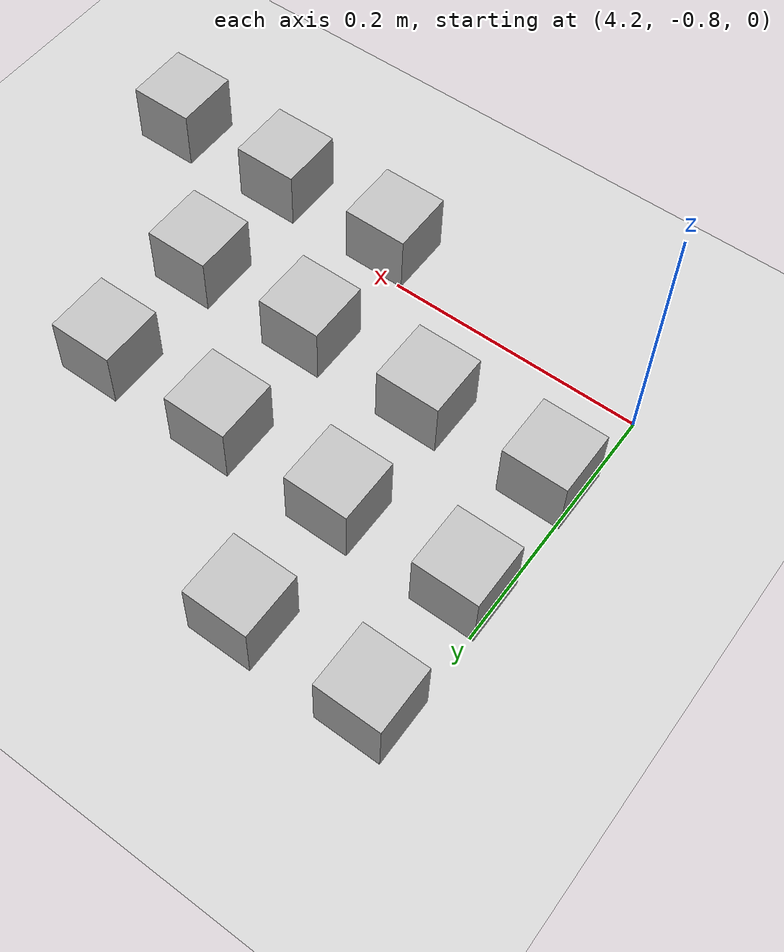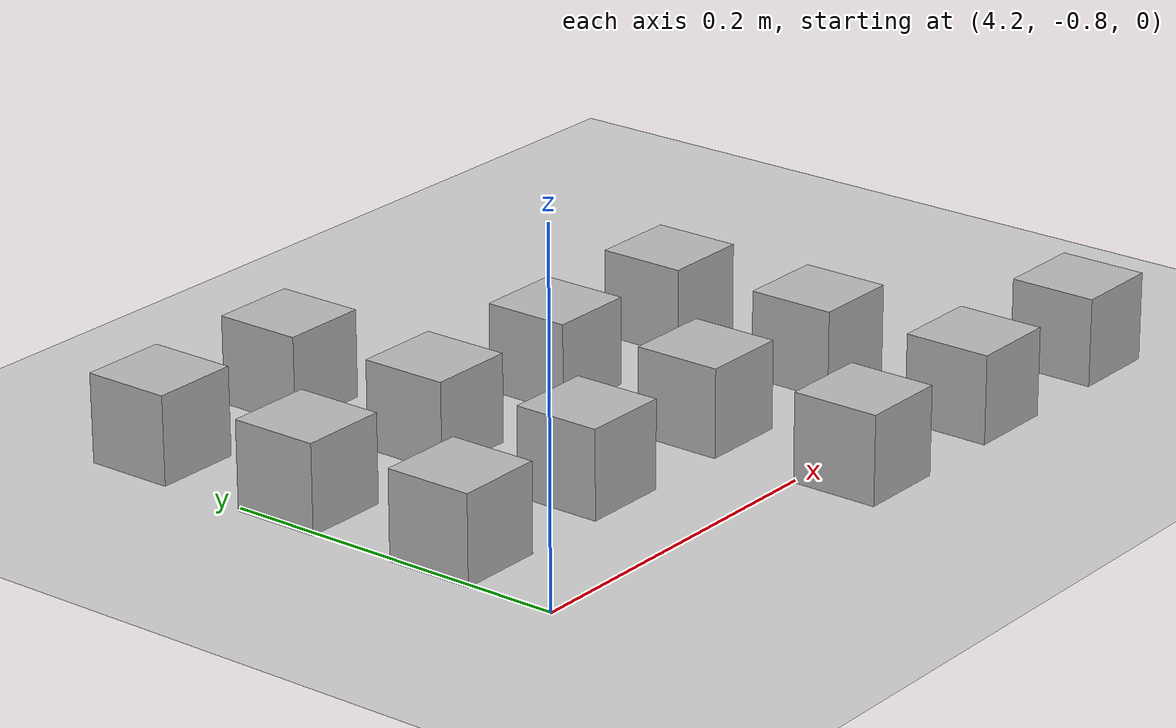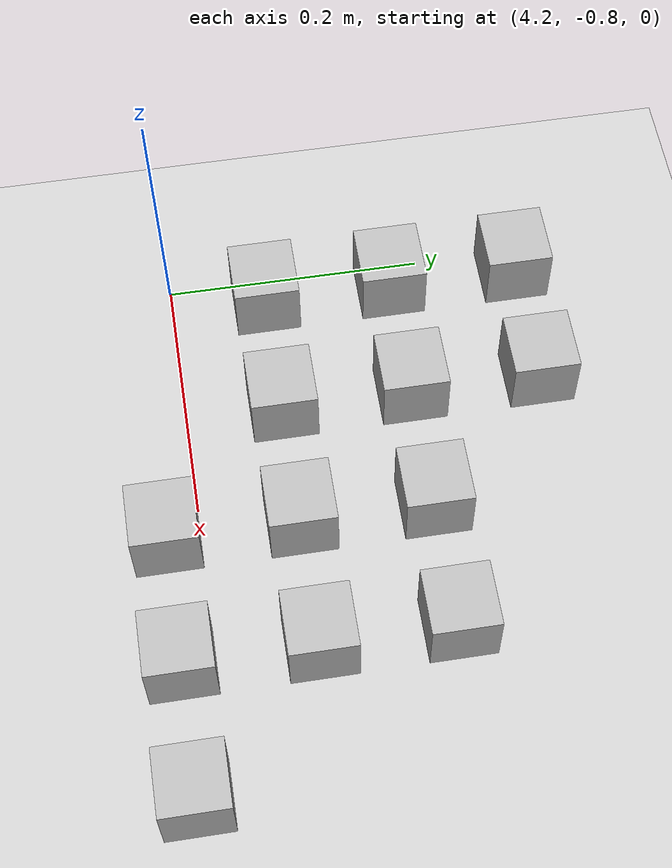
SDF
<sdf version="1.6">
 <world name="default">
  <model name="ground_plane">
   <static>1</static>
   <link name="link">
    <collision name="collision">
     <geometry><plane><normal>0 0 1</normal><size>100 100</size></plane></geometry>
     <surface><friction><ode><mu>100</mu><mu2>50</mu2></ode></friction></surface>
    </collision>
    <visual name="visual">
     <cast_shadows>0</cast_shadows>
     <geometry><plane><normal>0 0 1</normal><size>100 100</size></plane></geometry>
     <material>
      <script><uri>file://media/materials/scripts/gazebo.material</uri><name>Gazebo/Grey</name></script>
     </material>
    </visual>
   </link>
  </model>
  <model name="at18">
   <static>0</static>
   <link name="link">
    <inertial>
     <mass>0.01</mass>
     <inertia><ixx>4e-05</ixx><ixy>0</ixy><ixz>0</ixz><iyy>4e-05</iyy><iyz>0</iyz><izz>4e-05</izz></inertia>
    </inertial>
    <visual name="visual">
     <geometry><box><size>0.05 0.05 0.05</size></box></geometry>
     <material>
      <script>
       <uri>model://at0/materials/scripts</uri>
       <uri>model://at0/materials/textures</uri>
       <name>at0/Diffuse</name>
      </script>
     </material>
    </visual>
    <collision name="collision">
     <geometry><box><size>0.05 0.05 0.05</size></box></geometry>
     <surface><friction><ode><mu>0.8</mu><mu2>0.7</mu2></ode></friction></surface>
    </collision>
   </link>
   <pose>4.42228 -0.82543 0.025 0 -0 0</pose>
  </model>
  <model name="at19">
   <static>0</static>
   <link name="link">
    <inertial>
     <mass>0.01</mass>
     <inertia><ixx>4e-05</ixx><ixy>0</ixy><ixz>0</ixz><iyy>4e-05</iyy><iyz>0</iyz><izz>4e-05</izz></inertia>
    </inertial>
    <visual name="visual">
     <geometry><box><size>0.05 0.05 0.05</size></box></geometry>
     <material>
      <script>
       <uri>model://at0/materials/scripts</uri>
       <uri>model://at0/materials/textures</uri>
       <name>at0/Diffuse</name>
      </script>
     </material>
    </visual>
    <collision name="collision">
     <geometry><box><size>0.05 0.05 0.05</size></box></geometry>
     <surface><friction><ode><mu>0.8</mu><mu2>0.7</mu2></ode></friction></surface>
    </collision>
   </link>
   <pose>4.52228 -0.82543 0.025 0 -0 0</pose>
  </model>
  <model name="at20">
   <static>0</static>
   <link name="link">
    <inertial>
     <mass>0.01</mass>
     <inertia><ixx>4e-05</ixx><ixy>0</ixy><ixz>0</ixz><iyy>4e-05</iyy><iyz>0</iyz><izz>4e-05</izz></inertia>
    </inertial>
    <visual name="visual">
     <geometry><box><size>0.05 0.05 0.05</size></box></geometry>
     <material>
      <script>
       <uri>model://at0/materials/scripts</uri>
       <uri>model://at0/materials/textures</uri>
       <name>at0/Diffuse</name>
      </script>
     </material>
    </visual>
    <collision name="collision">
     <geometry><box><size>0.05 0.05 0.05</size></box></geometry>
     <surface><friction><ode><mu>0.8</mu><mu2>0.7</mu2></ode></friction></surface>
    </collision>
   </link>
   <pose>4.62228 -0.82543 0.025 0 -0 0</pose>
  </model>
  <model name="at24">
   <static>0</static>
   <link name="link">
    <inertial>
     <mass>0.01</mass>
     <inertia><ixx>4e-05</ixx><ixy>0</ixy><ixz>0</ixz><iyy>4e-05</iyy><iyz>0</iyz><izz>4e-05</izz></inertia>
    </inertial>
    <visual name="visual">
     <geometry><box><size>0.05 0.05 0.05</size></box></geometry>
     <material>
      <script>
       <uri>model://at0/materials/scripts</uri>
       <uri>model://at0/materials/textures</uri>
       <name>at0/Diffuse</name>
      </script>
     </material>
    </visual>
    <collision name="collision">
     <geometry><box><size>0.05 0.05 0.05</size></box></geometry>
     <surface><friction><ode><mu>0.8</mu><mu2>0.7</mu2></ode></friction></surface>
    </collision>
   </link>
   <pose>4.22228 -0.72543 0.025 0 -0 0</pose>
  </model>
  <model name="at25">
   <static>0</static>
   <link name="link">
    <inertial>
     <mass>0.01</mass>
     <inertia><ixx>4e-05</ixx><ixy>0</ixy><ixz>0</ixz><iyy>4e-05</iyy><iyz>0</iyz><izz>4e-05</izz></inertia>
    </inertial>
    <visual name="visual">
     <geometry><box><size>0.05 0.05 0.05</size></box></geometry>
     <material>
      <script>
       <uri>model://at0/materials/scripts</uri>
       <uri>model://at0/materials/textures</uri>
       <name>at0/Diffuse</name>
      </script>
     </material>
    </visual>
    <collision name="collision">
     <geometry><box><size>0.05 0.05 0.05</size></box></geometry>
     <surface><friction><ode><mu>0.8</mu><mu2>0.7</mu2></ode></friction></surface>
    </collision>
   </link>
   <pose>4.32228 -0.72543 0.025 0 -0 0</pose>
  </model>
  <model name="at26">
   <static>0</static>
   <link name="link">
    <inertial>
     <mass>0.01</mass>
     <inertia><ixx>4e-05</ixx><ixy>0</ixy><ixz>0</ixz><iyy>4e-05</iyy><iyz>0</iyz><izz>4e-05</izz></inertia>
    </inertial>
    <visual name="visual">
     <geometry><box><size>0.05 0.05 0.05</size></box></geometry>
     <material>
      <script>
       <uri>model://at0/materials/scripts</uri>
       <uri>model://at0/materials/textures</uri>
       <name>at0/Diffuse</name>
      </script>
     </material>
    </visual>
    <collision name="collision">
     <geometry><box><size>0.05 0.05 0.05</size></box></geometry>
     <surface><friction><ode><mu>0.8</mu><mu2>0.7</mu2></ode></friction></surface>
    </collision>
   </link>
   <pose>4.42228 -0.72543 0.025 0 -0 0</pose>
  </model>
  <model name="at27">
   <static>0</static>
   <link name="link">
    <inertial>
     <mass>0.01</mass>
     <inertia><ixx>4e-05</ixx><ixy>0</ixy><ixz>0</ixz><iyy>4e-05</iyy><iyz>0</iyz><izz>4e-05</izz></inertia>
    </inertial>
    <visual name="visual">
     <geometry><box><size>0.05 0.05 0.05</size></box></geometry>
     <material>
      <script>
       <uri>model://at0/materials/scripts</uri>
       <uri>model://at0/materials/textures</uri>
       <name>at0/Diffuse</name>
      </script>
     </material>
    </visual>
    <collision name="collision">
     <geometry><box><size>0.05 0.05 0.05</size></box></geometry>
     <surface><friction><ode><mu>0.8</mu><mu2>0.7</mu2></ode></friction></surface>
    </collision>
   </link>
   <pose>4.52228 -0.72543 0.025 0 -0 0</pose>
  </model>
  <model name="at32">
   <static>0</static>
   <link name="link">
    <inertial>
     <mass>0.01</mass>
     <inertia><ixx>4e-05</ixx><ixy>0</ixy><ixz>0</ixz><iyy>4e-05</iyy><iyz>0</iyz><izz>4e-05</izz></inertia>
    </inertial>
    <visual name="visual">
     <geometry><box><size>0.05 0.05 0.05</size></box></geometry>
     <material>
      <script>
       <uri>model://at0/materials/scripts</uri>
       <uri>model://at0/materials/textures</uri>
       <name>at0/Diffuse</name>
      </script>
     </material>
    </visual>
    <collision name="collision">
     <geometry><box><size>0.05 0.05 0.05</size></box></geometry>
     <surface><friction><ode><mu>0.8</mu><mu2>0.7</mu2></ode></friction></surface>
    </collision>
   </link>
   <pose>4.22228 -0.62543 0.025 0 -0 0</pose>
  </model>
  <model name="at33">
   <static>0</static>
   <link name="link">
    <inertial>
     <mass>0.01</mass>
     <inertia><ixx>4e-05</ixx><ixy>0</ixy><ixz>0</ixz><iyy>4e-05</iyy><iyz>0</iyz><izz>4e-05</izz></inertia>
    </inertial>
    <visual name="visual">
     <geometry><box><size>0.05 0.05 0.05</size></box></geometry>
     <material>
      <script>
       <uri>model://at0/materials/scripts</uri>
       <uri>model://at0/materials/textures</uri>
       <name>at0/Diffuse</name>
      </script>
     </material>
    </visual>
    <collision name="collision">
     <geometry><box><size>0.05 0.05 0.05</size></box></geometry>
     <surface><friction><ode><mu>0.8</mu><mu2>0.7</mu2></ode></friction></surface>
    </collision>
   </link>
   <pose>4.32228 -0.62543 0.025 0 -0 0</pose>
  </model>
  <model name="at34">
   <static>0</static>
   <link name="link">
    <inertial>
     <mass>0.01</mass>
     <inertia><ixx>4e-05</ixx><ixy>0</ixy><ixz>0</ixz><iyy>4e-05</iyy><iyz>0</iyz><izz>4e-05</izz></inertia>
    </inertial>
    <visual name="visual">
     <geometry><box><size>0.05 0.05 0.05</size></box></geometry>
     <material>
      <script>
       <uri>model://at0/materials/scripts</uri>
       <uri>model://at0/materials/textures</uri>
       <name>at0/Diffuse</name>
      </script>
     </material>
    </visual>
    <collision name="collision">
     <geometry><box><size>0.05 0.05 0.05</size></box></geometry>
     <surface><friction><ode><mu>0.8</mu><mu2>0.7</mu2></ode></friction></surface>
    </collision>
   </link>
   <pose>4.42228 -0.62543 0.025 0 -0 0</pose>
  </model>
  <model name="at35">
   <static>0</static>
   <link name="link">
    <inertial>
     <mass>0.01</mass>
     <inertia><ixx>4e-05</ixx><ixy>0</ixy><ixz>0</ixz><iyy>4e-05</iyy><iyz>0</iyz><izz>4e-05</izz></inertia>
    </inertial>
    <visual name="visual">
     <geometry><box><size>0.05 0.05 0.05</size></box></geometry>
     <material>
      <script>
       <uri>model://at0/materials/scripts</uri>
       <uri>model://at0/materials/textures</uri>
       <name>at0/Diffuse</name>
      </script>
     </material>
    </visual>
    <collision name="collision">
     <geometry><box><size>0.05 0.05 0.05</size></box></geometry>
     <surface><friction><ode><mu>0.8</mu><mu2>0.7</mu2></ode></friction></surface>
    </collision>
   </link>
   <pose>4.52228 -0.62543 0.025 0 -0 0</pose>
  </model>
  <model name="at40">
   <static>0</static>
   <link name="link">
    <inertial>
     <mass>0.01</mass>
     <inertia><ixx>4e-05</ixx><ixy>0</ixy><ixz>0</ixz><iyy>4e-05</iyy><iyz>0</iyz><izz>4e-05</izz></inertia>
    </inertial>
    <visual name="visual">
     <geometry><box><size>0.05 0.05 0.05</size></box></geometry>
     <material>
      <script>
       <uri>model://at0/materials/scripts</uri>
       <uri>model://at0/materials/textures</uri>
       <name>at0/Diffuse</name>
      </script>
     </material>
    </visual>
    <collision name="collision">
     <geometry><box><size>0.05 0.05 0.05</size></box></geometry>
     <surface><friction><ode><mu>0.8</mu><mu2>0.7</mu2></ode></friction></surface>
    </collision>
   </link>
   <pose>4.22228 -0.52543 0.025 0 -0 0</pose>
  </model>
  <model name="at41">
   <static>0</static>
   <link name="link">
    <inertial>
     <mass>0.01</mass>
     <inertia><ixx>4e-05</ixx><ixy>0</ixy><ixz>0</ixz><iyy>4e-05</iyy><iyz>0</iyz><izz>4e-05</izz></inertia>
    </inertial>
    <visual name="visual">
     <geometry><box><size>0.05 0.05 0.05</size></box></geometry>
     <material>
      <script>
       <uri>model://at0/materials/scripts</uri>
       <uri>model://at0/materials/textures</uri>
       <name>at0/Diffuse</name>
      </script>
     </material>
    </visual>
    <collision name="collision">
     <geometry><box><size>0.05 0.05 0.05</size></box></geometry>
     <surface><friction><ode><mu>0.8</mu><mu2>0.7</mu2></ode></friction></surface>
    </collision>
   </link>
   <pose>4.32228 -0.52543 0.025 0 -0 0</pose>
  </model>
 </world>
</sdf>
